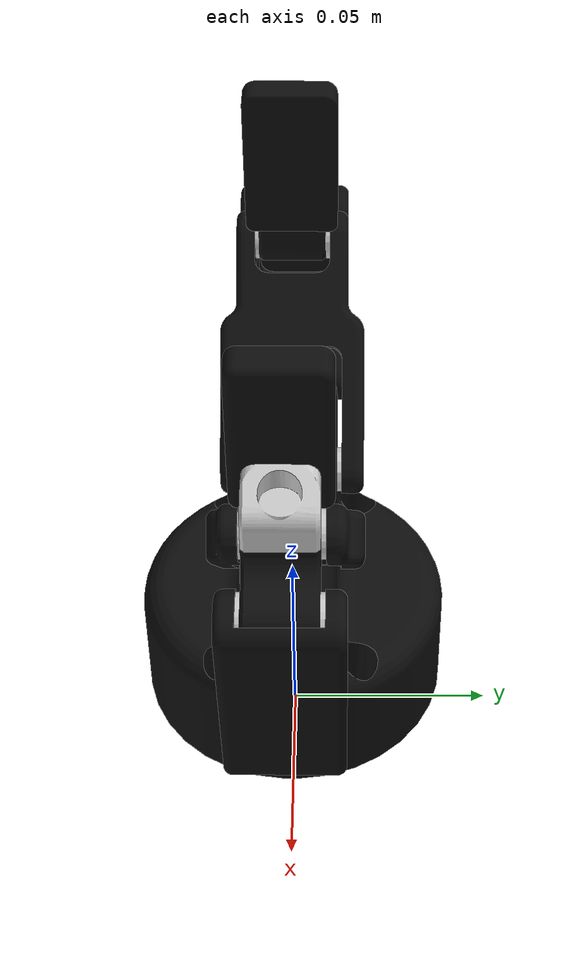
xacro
<?xml version="1.0"?>
<robot xmlns:xacro="http://wiki.ros.org/xacro" name="robotiq_2f_85">
  <!-- Parameters -->
  <xacro:arg name="prefix" default="robotiq_2f_" />
  <xacro:arg name="ur_coupling" default="false" />
  <xacro:arg name="mimic" default="true" />
  <xacro:arg name="sim_gazebo" default="false" />

  <!-- Import macro -->
  <xacro:include filename="$(find robotiq_2f_85_description)/urdf/robotiq_2f_85_macro.xacro" />

  <xacro:robotiq_2f_85
    name="robotiq_2f_85"
    prefix="$(arg prefix)"
    ur_coupling="$(arg ur_coupling)"
    mimic="$(arg mimic)"
    sim_gazebo="$(arg sim_gazebo)"
  />

  <!-- Joint with world -->
  <link name="world" />
  <xacro:if value="$(arg ur_coupling)">
    <xacro:property name="root_link" value="$(arg prefix)coupling_link" />
  </xacro:if>
  <xacro:unless value="$(arg ur_coupling)">
    <xacro:property name="root_link" value="$(arg prefix)base_link" />
  </xacro:unless>
  <joint name="$(arg prefix)root_joint" type="fixed">
    <parent link="world" />
    <child link="${root_link}" />
    <origin xyz="0 0 0.01" rpy="0 0 0" />
  </joint>
</robot>

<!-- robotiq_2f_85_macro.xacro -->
<robot xmlns:xacro="http://wiki.ros.org/xacro">
  <xacro:macro name="robotiq_2f_85"
    params="name prefix ur_coupling:=false mimic:=true sim_gazebo:=false">
    <xacro:property name="description_package" value="$(find robotiq_2f_85_description)" />

    <!-- ros2_control -->
    <xacro:include filename="${description_package}/urdf/robotiq_2f_85.ros2_control.xacro" />
    <xacro:robotiq_2f_85_ros2_control name="${name}" prefix="${prefix}" sim_gazebo="${sim_gazebo}" />

    <link name="${prefix}base_link">
      <visual>
        <geometry>
          <mesh filename="file://${description_package}/meshes/visual/base.dae" />
        </geometry>
      </visual>
      <collision>
        <geometry>
          <mesh filename="file://${description_package}/meshes/collision/base.stl" />
        </geometry>
      </collision>
      <inertial>
        <origin xyz="0.0 0.0 32.2e-3" rpy="0 0 0" />
        <mass value="0.616" />
        <inertia ixx="481.2e-6" iyy="547.0e-6" izz="366.8e-6" ixy="0.0" ixz="0.0" iyz="0.3e-6" />
      </inertial>
    </link>

    <xacro:if value="${ur_coupling}">
      <link name="${prefix}coupling_link">
        <visual>
          <geometry>
            <mesh filename="file://${description_package}/meshes/visual/grp_es_cpl_062.dae" />
          </geometry>
        </visual>
        <collision>
          <geometry>
            <mesh filename="file://${description_package}/meshes/collision/grp_es_cpl_062.stl" />
          </geometry>
        </collision>
        <inertial>
          <origin xyz="-0.9e-3 0.0 5.26e-3" rpy="0 0 0" />
          <mass value="0.100" />
          <inertia ixx="40.8e-6" iyy="42.9e-6" izz="80.7e-6" ixy="0.4e-6" ixz="-0.1e-6" iyz="0.2e-6" />
        </inertial>
      </link>

      <joint name="${prefix}base_joint" type="fixed">
        <parent link="${prefix}coupling_link" />
        <child link="${prefix}base_link" />
        <origin xyz="0 0 11e-3" rpy="0 0 0" />
      </joint>
    </xacro:if>

    <!-- Macro to define a single finger -->
    <xacro:macro name="finger" params="finger mirror">
      <xacro:if value="${mirror}">
        <xacro:property name="x_gain" value="-1" />
        <xacro:property name="yaw" value="${pi}" />
      </xacro:if>
      <xacro:unless value="${mirror}">
        <xacro:property name="x_gain" value="1" />
        <xacro:property name="yaw" value="0" />
      </xacro:unless>

      <link name="${prefix}${finger}_fingertip_link">
        <visual>
          <geometry>
            <mesh filename="file://${description_package}/meshes/visual/fingertip.dae" />
          </geometry>
        </visual>
        <collision>
          <geometry>
            <mesh filename="file://${description_package}/meshes/collision/fingertip.stl" />
          </geometry>
        </collision>
        <inertial>
          <origin xyz="-7.9e-3 0.0 15.8e-3" rpy="0 0 0" />
          <mass value="0.020" />
          <inertia ixx="3.6e-6" iyy="3.3e-6" izz="1.3e-6" ixy="0.0" ixz="0.5e-6" iyz="0.0" />
        </inertial>
      </link>
      <link name="${prefix}${finger}_finger1_link">
        <visual>
          <geometry>
            <mesh filename="file://${description_package}/meshes/visual/finger1.dae" />
          </geometry>
        </visual>
        <collision>
          <geometry>
            <mesh filename="file://${description_package}/meshes/collision/finger1.stl" />
          </geometry>
        </collision>
        <inertial>
          <origin xyz="12.1e-3 0.0 -0.9e-3" rpy="0 0 0" />
          <mass value="0.013" />
          <inertia ixx="0.3e-6" iyy="2.1e-6" izz="2.1e-6" ixy="0.0" ixz="0.1e-6" iyz="0.0" />
        </inertial>
      </link>
      <link name="${prefix}${finger}_finger2_link">
        <visual>
          <geometry>
            <mesh filename="file://${description_package}/meshes/visual/finger2.dae" />
          </geometry>
        </visual>
        <collision>
          <geometry>
            <mesh filename="file://${description_package}/meshes/collision/finger2.stl" />
          </geometry>
        </collision>
        <inertial>
          <origin xyz="1.4e-3 0.0 18.9e-3" rpy="0 0 0" />
          <mass value="0.039" />
          <inertia ixx="12.7e-6" iyy="10.9e-6" izz="4.9e-6" ixy="0.0" ixz="-2.2e-6" iyz="0.0" />
        </inertial>
      </link>
      <link name="${prefix}${finger}_finger3_link">
        <visual>
          <geometry>
            <mesh filename="file://${description_package}/meshes/visual/finger3.dae" />
          </geometry>
        </visual>
        <collision>
          <geometry>
            <mesh filename="file://${description_package}/meshes/collision/finger3.stl" />
          </geometry>
        </collision>
        <inertial>
          <origin xyz="19.5e-3 0.0 21.9e-3" rpy="0 0 0" />
          <mass value="0.028" />
          <inertia ixx="8.7e-6" iyy="8.1e-6" izz="7.8e-6" ixy="0.0" ixz="-3.7e-6" iyz="0.0" />
        </inertial>
      </link>
      <link name="${prefix}${finger}_finger4_link">
        <visual>
          <geometry>
            <mesh filename="file://${description_package}/meshes/visual/finger4.dae" />
          </geometry>
        </visual>
        <collision>
          <geometry>
            <mesh filename="file://${description_package}/meshes/collision/finger4.stl" />
          </geometry>
        </collision>
        <inertial>
          <origin xyz="-9.3e-3 0.0 4.0e-3" rpy="0 0 0" />
          <mass value="0.018" />
          <inertia ixx="0.9e-6" iyy="1.6e-6" izz="1.7e-6" ixy="0.0" ixz="0.4e-6" iyz="0.0" />
        </inertial>
      </link>

      <joint name="${prefix}${finger}_fingertip_joint" type="fixed">
        <parent link="${prefix}${finger}_finger4_link" />
        <child link="${prefix}${finger}_fingertip_link" />
        <origin xyz="-11.40173e-3 0.0 13.01497e-3" rpy="0 0 0" />
      </joint>
      <joint name="${prefix}${finger}_finger1_joint" type="revolute">
        <parent link="${prefix}base_link" />
        <child link="${prefix}${finger}_finger1_link" />
        <axis xyz="0 -1 0" />
        <origin xyz="${x_gain * 30.60114e-3} 0.0 54.90452e-3" rpy="0 0 ${yaw}" />
        <limit lower="0.0" upper="0.8" velocity="0.5" effort="50" />
        <xacro:if value="${mimic and mirror}">
          <mimic joint="${prefix}left_finger1_joint" />
        </xacro:if>
      </joint>
      <joint name="${prefix}${finger}_finger2_joint" type="fixed">
        <parent link="${prefix}${finger}_finger1_link" />
        <child link="${prefix}${finger}_finger2_link" />
        <origin xyz="33.89925e-3 0.0 -4.8891e-3" rpy="0 0 0" />
      </joint>
      <joint name="${prefix}${finger}_finger3_joint" type="continuous">
        <parent link="${prefix}base_link" />
        <child link="${prefix}${finger}_finger3_link" />
        <axis xyz="0 -1 0" />
        <origin xyz="${x_gain * 12.7e-3} 0.0 61.42e-3" rpy="0 0 ${yaw}" />
        <xacro:if value="${mimic}">
          <mimic joint="${prefix}${finger}_finger1_joint" />
        </xacro:if>
      </joint>
      <joint name="${prefix}${finger}_finger4-2_joint" type="revolute">
        <parent link="${prefix}${finger}_finger2_link" />
        <child link="${prefix}${finger}_finger4_link" />
        <axis xyz="0 -1 0" />
        <origin xyz="4.30896e-3 0.0 47.39022e-3" rpy="0 0 0" />
        <limit lower="-${2*pi/3}" upper="${pi/4}" velocity="0.5" effort="50" />
        <xacro:if value="${mimic}">
          <mimic joint="${prefix}${finger}_finger1_joint" multiplier="-1" />
        </xacro:if>
      </joint>

      <xacro:unless value="${mimic}">
        <!-- Close loop by injecting SDF -->
        <gazebo>
          <joint name="${prefix}${finger}_finger4-3_joint" type="revolute">
            <parent>${prefix}${finger}_finger3_link</parent>
            <child>${prefix}${finger}_finger4_link</child>
            <axis>
              <xyz>0 -1 0</xyz>
            </axis>
            <pose>-17.90144e-3 0.0 6.51468e-3 0 0 0</pose>
          </joint>
        </gazebo>
      </xacro:unless>
    </xacro:macro>

    <xacro:finger finger="left" mirror="false" />
    <xacro:finger finger="right" mirror="true" />
  </xacro:macro>
</robot>
